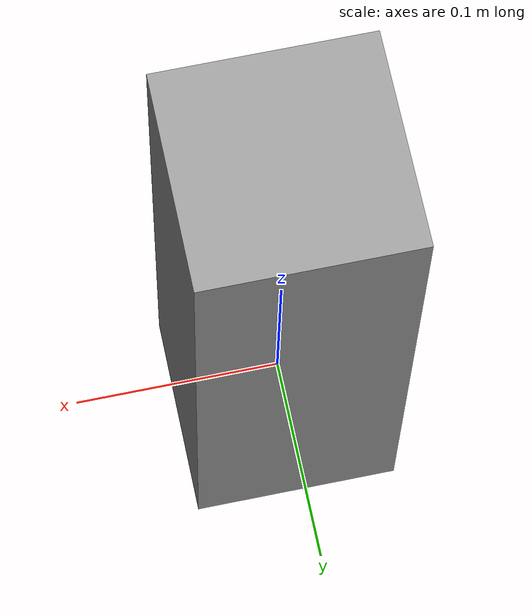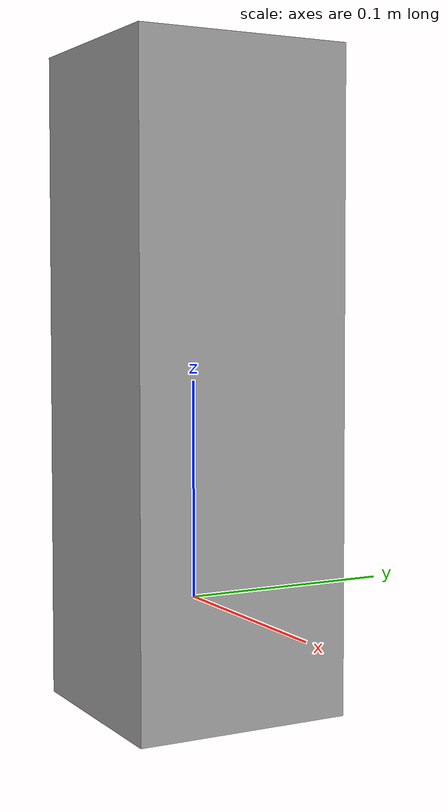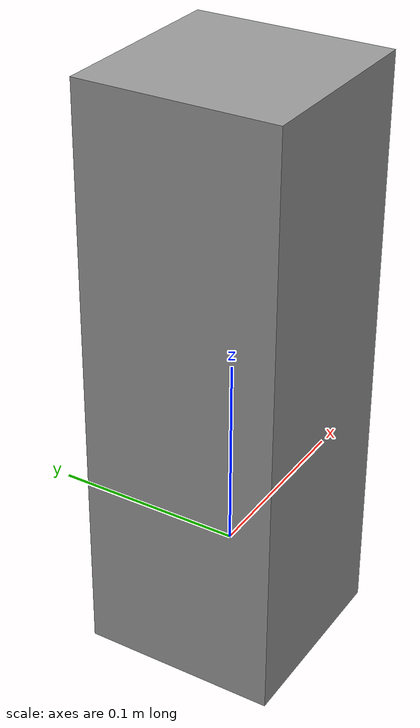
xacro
<?xml version="1.0"?>
<robot xmlns:xacro="http://www.ros.org/wiki/xacro" name="orphan_arm">

  <xacro:include filename="$(find fixture_common)/urdf/common_materials.xacro"/>

  <link name="base_link"/>
  <xacro:fixture_link name="link_1"/>

  <joint name="joint_1" type="revolute">
    <parent link="base_link"/>
    <child link="link_1"/>
    <origin xyz="0 0 0.1" rpy="0 0 0"/>
    <axis xyz="0 0 1"/>
    <limit lower="-3.14" upper="3.14" effort="100" velocity="2.0"/>
  </joint>

</robot>

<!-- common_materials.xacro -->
<!-- The sibling package. Reached only through $(find fixture_common), which is
     the thing being tested: this file is in a *different* package from the
     robot that includes it. -->
<robot xmlns:xacro="http://www.ros.org/wiki/xacro">

  <material name="fixture_grey">
    <color rgba="0.6 0.6 0.6 1.0"/>
  </material>

  <!-- A macro defined here and invoked from the other package, so a failure to
       resolve shows up as a missing macro rather than a missing material. -->
  <xacro:macro name="fixture_link" params="name">
    <link name="${name}">
      <visual>
        <geometry><box size="0.1 0.1 0.3"/></geometry>
        <material name="fixture_grey"/>
      </visual>
    </link>
  </xacro:macro>

</robot>
